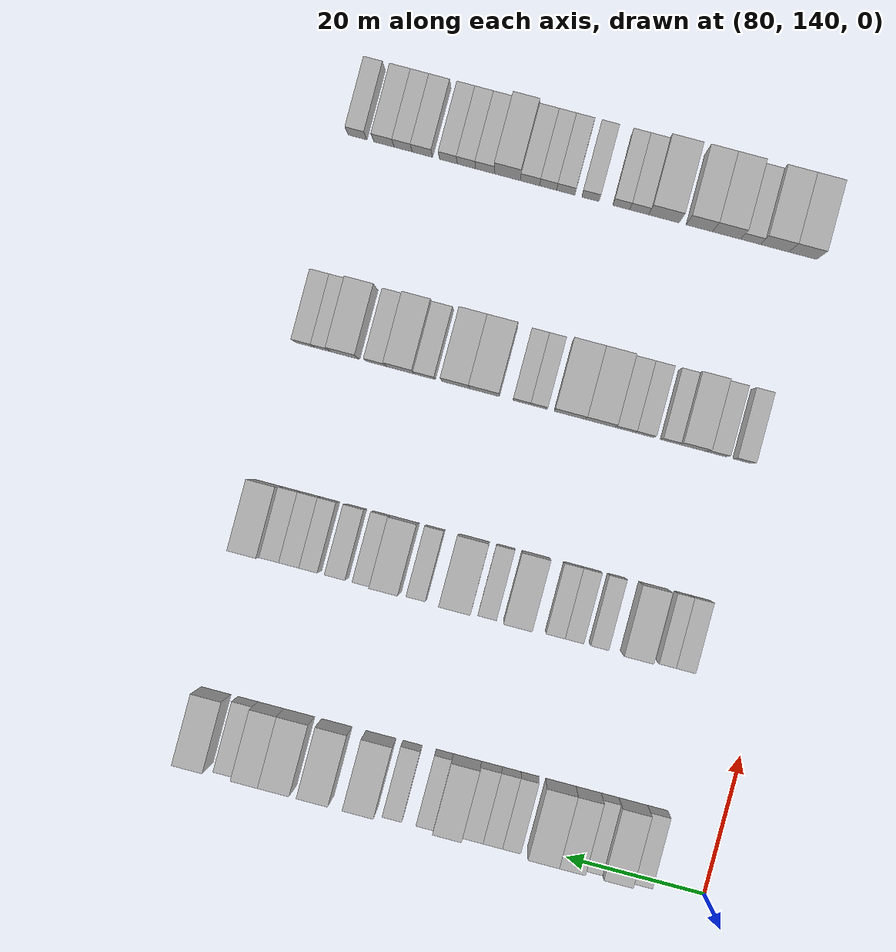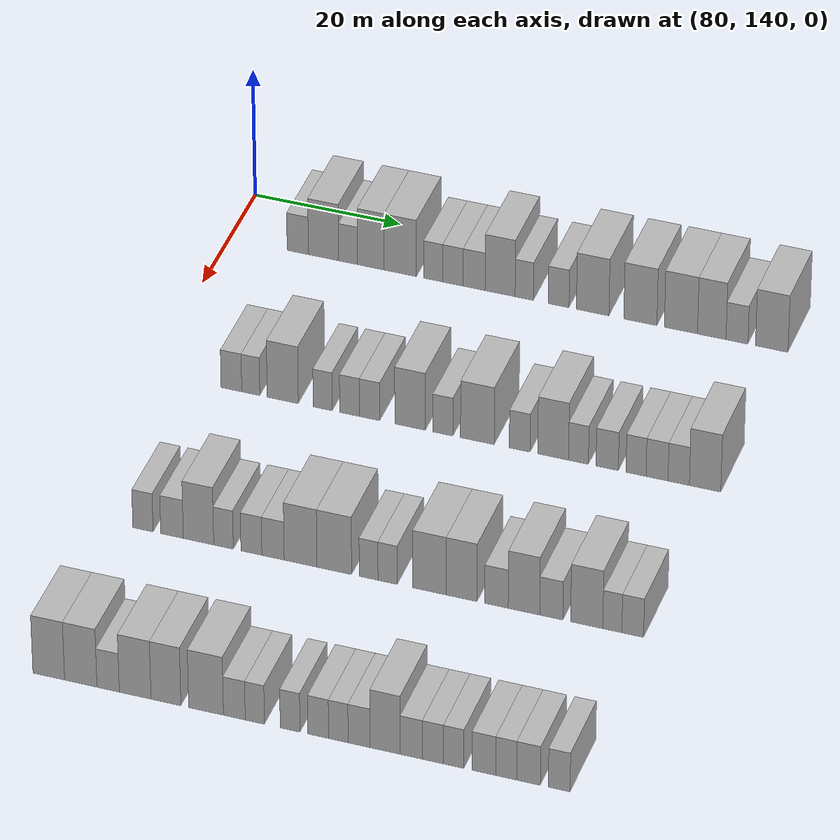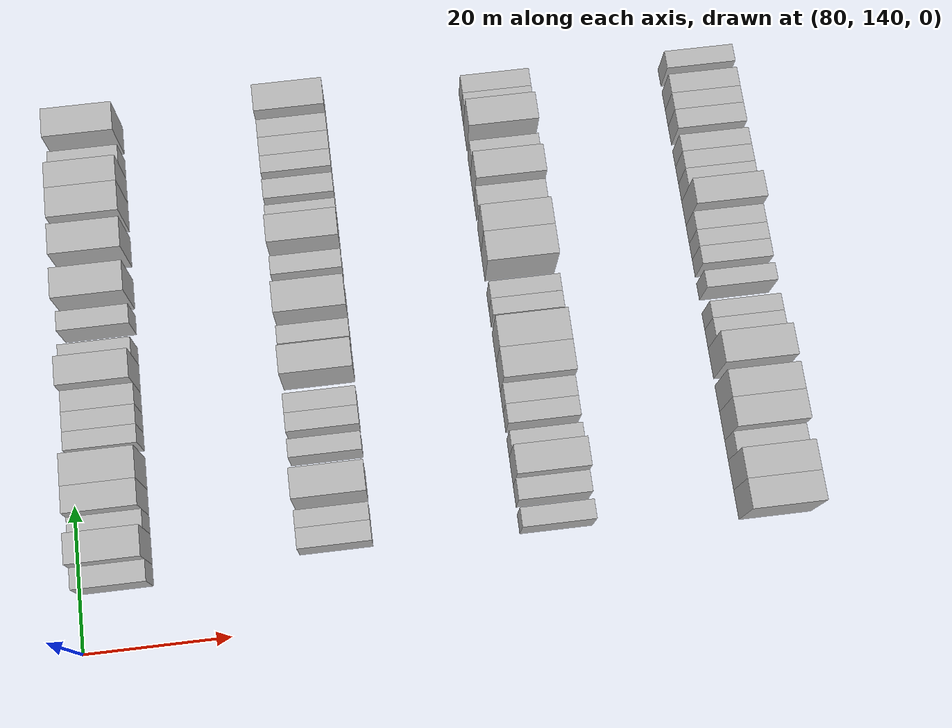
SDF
<sdf version="1.6">
 <world name="default">
  <model name="building_615">
   <static>1</static>
   <pose>85.0000 149.4168 0 0.000000 0.000000 0.000000</pose>
   <link name="link">
    <pose>0 0 3.00 0 0 0</pose>
    <collision name="collision"><geometry><box><size>10.0000 2.9151 6.0000</size></box></geometry></collision>
    <visual name="visual">
     <cast_shadows>0</cast_shadows>
     <geometry><box><size>10.0000 2.9151 6.0000</size></box></geometry>
     <material>
      <script>
       <uri>model://HANNAS_wall/materials/scripts</uri>
       <uri>model://HANNAS_wall/materials/textures</uri>
       <name>vrc/HANNAS_wall</name>
      </script>
     </material>
    </visual>
   </link>
  </model>
  <model name="building_616">
   <static>1</static>
   <pose>85.0000 152.9480 0 0.000000 0.000000 0.000000</pose>
   <link name="link">
    <pose>0 0 4.50 0 0 0</pose>
    <collision name="collision"><geometry><box><size>10.0000 4.1473 9.0000</size></box></geometry></collision>
    <visual name="visual">
     <cast_shadows>0</cast_shadows>
     <geometry><box><size>10.0000 4.1473 9.0000</size></box></geometry>
     <material>
      <script>
       <uri>model://HANNAS_wall/materials/scripts</uri>
       <uri>model://HANNAS_wall/materials/textures</uri>
       <name>vrc/HANNAS_wall</name>
      </script>
     </material>
    </visual>
   </link>
  </model>
  <model name="building_617">
   <static>1</static>
   <pose>85.0000 156.3062 0 0.000000 0.000000 0.000000</pose>
   <link name="link">
    <pose>0 0 3.00 0 0 0</pose>
    <collision name="collision"><geometry><box><size>10.0000 2.5690 6.0000</size></box></geometry></collision>
    <visual name="visual">
     <cast_shadows>0</cast_shadows>
     <geometry><box><size>10.0000 2.5690 6.0000</size></box></geometry>
     <material>
      <script>
       <uri>model://HANNAS_wall/materials/scripts</uri>
       <uri>model://HANNAS_wall/materials/textures</uri>
       <name>vrc/HANNAS_wall</name>
      </script>
     </material>
    </visual>
   </link>
  </model>
  <model name="building_618">
   <static>1</static>
   <pose>85.0000 159.4167 0 0.000000 0.000000 0.000000</pose>
   <link name="link">
    <pose>0 0 4.50 0 0 0</pose>
    <collision name="collision"><geometry><box><size>10.0000 3.6521 9.0000</size></box></geometry></collision>
    <visual name="visual">
     <cast_shadows>0</cast_shadows>
     <geometry><box><size>10.0000 3.6521 9.0000</size></box></geometry>
     <material>
      <script>
       <uri>model://HANNAS_wall/materials/scripts</uri>
       <uri>model://HANNAS_wall/materials/textures</uri>
       <name>vrc/HANNAS_wall</name>
      </script>
     </material>
    </visual>
   </link>
  </model>
  <model name="building_619">
   <static>1</static>
   <pose>85.0000 163.4427 0 0.000000 0.000000 0.000000</pose>
   <link name="link">
    <pose>0 0 4.50 0 0 0</pose>
    <collision name="collision"><geometry><box><size>10.0000 4.3999 9.0000</size></box></geometry></collision>
    <visual name="visual">
     <cast_shadows>0</cast_shadows>
     <geometry><box><size>10.0000 4.3999 9.0000</size></box></geometry>
     <material>
      <script>
       <uri>model://HANNAS_wall/materials/scripts</uri>
       <uri>model://HANNAS_wall/materials/textures</uri>
       <name>vrc/HANNAS_wall</name>
      </script>
     </material>
    </visual>
   </link>
  </model>
  <model name="building_620">
   <static>1</static>
   <pose>85.0000 167.9324 0 0.000000 0.000000 0.000000</pose>
   <link name="link">
    <pose>0 0 3.00 0 0 0</pose>
    <collision name="collision"><geometry><box><size>10.0000 2.5796 6.0000</size></box></geometry></collision>
    <visual name="visual">
     <cast_shadows>0</cast_shadows>
     <geometry><box><size>10.0000 2.5796 6.0000</size></box></geometry>
     <material>
      <script>
       <uri>model://HANNAS_wall/materials/scripts</uri>
       <uri>model://HANNAS_wall/materials/textures</uri>
       <name>vrc/HANNAS_wall</name>
      </script>
     </material>
    </visual>
   </link>
  </model>
  <model name="building_621">
   <static>1</static>
   <pose>85.0000 170.6071 0 0.000000 0.000000 0.000000</pose>
   <link name="link">
    <pose>0 0 3.00 0 0 0</pose>
    <collision name="collision"><geometry><box><size>10.0000 2.7698 6.0000</size></box></geometry></collision>
    <visual name="visual">
     <cast_shadows>0</cast_shadows>
     <geometry><box><size>10.0000 2.7698 6.0000</size></box></geometry>
     <material>
      <script>
       <uri>model://HANNAS_wall/materials/scripts</uri>
       <uri>model://HANNAS_wall/materials/textures</uri>
       <name>vrc/HANNAS_wall</name>
      </script>
     </material>
    </visual>
   </link>
  </model>
  <model name="building_622">
   <static>1</static>
   <pose>85.0000 173.4823 0 0.000000 0.000000 0.000000</pose>
   <link name="link">
    <pose>0 0 3.00 0 0 0</pose>
    <collision name="collision"><geometry><box><size>10.0000 2.9806 6.0000</size></box></geometry></collision>
    <visual name="visual">
     <cast_shadows>0</cast_shadows>
     <geometry><box><size>10.0000 2.9806 6.0000</size></box></geometry>
     <material>
      <script>
       <uri>model://HANNAS_wall/materials/scripts</uri>
       <uri>model://HANNAS_wall/materials/textures</uri>
       <name>vrc/HANNAS_wall</name>
      </script>
     </material>
    </visual>
   </link>
  </model>
  <model name="building_623">
   <static>1</static>
   <pose>85.0000 177.0059 0 0.000000 0.000000 0.000000</pose>
   <link name="link">
    <pose>0 0 4.50 0 0 0</pose>
    <collision name="collision"><geometry><box><size>10.0000 4.0666 9.0000</size></box></geometry></collision>
    <visual name="visual">
     <cast_shadows>0</cast_shadows>
     <geometry><box><size>10.0000 4.0666 9.0000</size></box></geometry>
     <material>
      <script>
       <uri>model://HANNAS_wall/materials/scripts</uri>
       <uri>model://HANNAS_wall/materials/textures</uri>
       <name>vrc/HANNAS_wall</name>
      </script>
     </material>
    </visual>
   </link>
  </model>
  <model name="building_624">
   <static>1</static>
   <pose>85.0000 180.2767 0 0.000000 0.000000 0.000000</pose>
   <link name="link">
    <pose>0 0 3.00 0 0 0</pose>
    <collision name="collision"><geometry><box><size>10.0000 2.4750 6.0000</size></box></geometry></collision>
    <visual name="visual">
     <cast_shadows>0</cast_shadows>
     <geometry><box><size>10.0000 2.4750 6.0000</size></box></geometry>
     <material>
      <script>
       <uri>model://HANNAS_wall/materials/scripts</uri>
       <uri>model://HANNAS_wall/materials/textures</uri>
       <name>vrc/HANNAS_wall</name>
      </script>
     </material>
    </visual>
   </link>
  </model>
  <model name="building_625">
   <static>1</static>
   <pose>85.0000 184.9134 0 0.000000 0.000000 0.000000</pose>
   <link name="link">
    <pose>0 0 3.00 0 0 0</pose>
    <collision name="collision"><geometry><box><size>10.0000 2.7983 6.0000</size></box></geometry></collision>
    <visual name="visual">
     <cast_shadows>0</cast_shadows>
     <geometry><box><size>10.0000 2.7983 6.0000</size></box></geometry>
     <material>
      <script>
       <uri>model://HANNAS_wall/materials/scripts</uri>
       <uri>model://HANNAS_wall/materials/textures</uri>
       <name>vrc/HANNAS_wall</name>
      </script>
     </material>
    </visual>
   </link>
  </model>
  <model name="building_626">
   <static>1</static>
   <pose>85.0000 189.5002 0 0.000000 0.000000 0.000000</pose>
   <link name="link">
    <pose>0 0 4.50 0 0 0</pose>
    <collision name="collision"><geometry><box><size>10.0000 4.3754 9.0000</size></box></geometry></collision>
    <visual name="visual">
     <cast_shadows>0</cast_shadows>
     <geometry><box><size>10.0000 4.3754 9.0000</size></box></geometry>
     <material>
      <script>
       <uri>model://HANNAS_wall/materials/scripts</uri>
       <uri>model://HANNAS_wall/materials/textures</uri>
       <name>vrc/HANNAS_wall</name>
      </script>
     </material>
    </visual>
   </link>
  </model>
  <model name="building_627">
   <static>1</static>
   <pose>85.0000 195.9035 0 0.000000 0.000000 0.000000</pose>
   <link name="link">
    <pose>0 0 4.50 0 0 0</pose>
    <collision name="collision"><geometry><box><size>10.0000 4.4311 9.0000</size></box></geometry></collision>
    <visual name="visual">
     <cast_shadows>0</cast_shadows>
     <geometry><box><size>10.0000 4.4311 9.0000</size></box></geometry>
     <material>
      <script>
       <uri>model://HANNAS_wall/materials/scripts</uri>
       <uri>model://HANNAS_wall/materials/textures</uri>
       <name>vrc/HANNAS_wall</name>
      </script>
     </material>
    </visual>
   </link>
  </model>
  <model name="building_628">
   <static>1</static>
   <pose>85.0000 201.3303 0 0.000000 0.000000 0.000000</pose>
   <link name="link">
    <pose>0 0 4.50 0 0 0</pose>
    <collision name="collision"><geometry><box><size>10.0000 4.4224 9.0000</size></box></geometry></collision>
    <visual name="visual">
     <cast_shadows>0</cast_shadows>
     <geometry><box><size>10.0000 4.4224 9.0000</size></box></geometry>
     <material>
      <script>
       <uri>model://HANNAS_wall/materials/scripts</uri>
       <uri>model://HANNAS_wall/materials/textures</uri>
       <name>vrc/HANNAS_wall</name>
      </script>
     </material>
    </visual>
   </link>
  </model>
  <model name="building_629">
   <static>1</static>
   <pose>85.0000 205.4470 0 0.000000 0.000000 0.000000</pose>
   <link name="link">
    <pose>0 0 4.50 0 0 0</pose>
    <collision name="collision"><geometry><box><size>10.0000 3.8111 9.0000</size></box></geometry></collision>
    <visual name="visual">
     <cast_shadows>0</cast_shadows>
     <geometry><box><size>10.0000 3.8111 9.0000</size></box></geometry>
     <material>
      <script>
       <uri>model://HANNAS_wall/materials/scripts</uri>
       <uri>model://HANNAS_wall/materials/textures</uri>
       <name>vrc/HANNAS_wall</name>
      </script>
     </material>
    </visual>
   </link>
  </model>
  <model name="building_630">
   <static>1</static>
   <pose>85.0000 208.8113 0 0.000000 0.000000 0.000000</pose>
   <link name="link">
    <pose>0 0 3.00 0 0 0</pose>
    <collision name="collision"><geometry><box><size>10.0000 2.9175 6.0000</size></box></geometry></collision>
    <visual name="visual">
     <cast_shadows>0</cast_shadows>
     <geometry><box><size>10.0000 2.9175 6.0000</size></box></geometry>
     <material>
      <script>
       <uri>model://HANNAS_wall/materials/scripts</uri>
       <uri>model://HANNAS_wall/materials/textures</uri>
       <name>vrc/HANNAS_wall</name>
      </script>
     </material>
    </visual>
   </link>
  </model>
  <model name="building_631">
   <static>1</static>
   <pose>85.0000 213.4278 0 0.000000 0.000000 0.000000</pose>
   <link name="link">
    <pose>0 0 4.50 0 0 0</pose>
    <collision name="collision"><geometry><box><size>10.0000 4.3154 9.0000</size></box></geometry></collision>
    <visual name="visual">
     <cast_shadows>0</cast_shadows>
     <geometry><box><size>10.0000 4.3154 9.0000</size></box></geometry>
     <material>
      <script>
       <uri>model://HANNAS_wall/materials/scripts</uri>
       <uri>model://HANNAS_wall/materials/textures</uri>
       <name>vrc/HANNAS_wall</name>
      </script>
     </material>
    </visual>
   </link>
  </model>
  <model name="building_837">
   <static>1</static>
   <pose>115.0000 151.1772 0 0.000000 0.000000 0.000000</pose>
   <link name="link">
    <pose>0 0 3.00 0 0 0</pose>
    <collision name="collision"><geometry><box><size>10.0000 2.7661 6.0000</size></box></geometry></collision>
    <visual name="visual">
     <cast_shadows>0</cast_shadows>
     <geometry><box><size>10.0000 2.7661 6.0000</size></box></geometry>
     <material>
      <script>
       <uri>model://HANNAS_wall/materials/scripts</uri>
       <uri>model://HANNAS_wall/materials/textures</uri>
       <name>vrc/HANNAS_wall</name>
      </script>
     </material>
    </visual>
   </link>
  </model>
  <model name="building_838">
   <static>1</static>
   <pose>115.0000 153.7708 0 0.000000 0.000000 0.000000</pose>
   <link name="link">
    <pose>0 0 3.00 0 0 0</pose>
    <collision name="collision"><geometry><box><size>10.0000 2.4211 6.0000</size></box></geometry></collision>
    <visual name="visual">
     <cast_shadows>0</cast_shadows>
     <geometry><box><size>10.0000 2.4211 6.0000</size></box></geometry>
     <material>
      <script>
       <uri>model://HANNAS_wall/materials/scripts</uri>
       <uri>model://HANNAS_wall/materials/textures</uri>
       <name>vrc/HANNAS_wall</name>
      </script>
     </material>
    </visual>
   </link>
  </model>
  <model name="building_839">
   <static>1</static>
   <pose>115.0000 158.0596 0 0.000000 0.000000 0.000000</pose>
   <link name="link">
    <pose>0 0 4.50 0 0 0</pose>
    <collision name="collision"><geometry><box><size>10.0000 4.1564 9.0000</size></box></geometry></collision>
    <visual name="visual">
     <cast_shadows>0</cast_shadows>
     <geometry><box><size>10.0000 4.1564 9.0000</size></box></geometry>
     <material>
      <script>
       <uri>model://HANNAS_wall/materials/scripts</uri>
       <uri>model://HANNAS_wall/materials/textures</uri>
       <name>vrc/HANNAS_wall</name>
      </script>
     </material>
    </visual>
   </link>
  </model>
  <model name="building_840">
   <static>1</static>
   <pose>115.0000 163.4055 0 0.000000 0.000000 0.000000</pose>
   <link name="link">
    <pose>0 0 3.00 0 0 0</pose>
    <collision name="collision"><geometry><box><size>10.0000 2.5354 6.0000</size></box></geometry></collision>
    <visual name="visual">
     <cast_shadows>0</cast_shadows>
     <geometry><box><size>10.0000 2.5354 6.0000</size></box></geometry>
     <material>
      <script>
       <uri>model://HANNAS_wall/materials/scripts</uri>
       <uri>model://HANNAS_wall/materials/textures</uri>
       <name>vrc/HANNAS_wall</name>
      </script>
     </material>
    </visual>
   </link>
  </model>
  <model name="building_841">
   <static>1</static>
   <pose>115.0000 166.9961 0 0.000000 0.000000 0.000000</pose>
   <link name="link">
    <pose>0 0 3.00 0 0 0</pose>
    <collision name="collision"><geometry><box><size>10.0000 2.6458 6.0000</size></box></geometry></collision>
    <visual name="visual">
     <cast_shadows>0</cast_shadows>
     <geometry><box><size>10.0000 2.6458 6.0000</size></box></geometry>
     <material>
      <script>
       <uri>model://HANNAS_wall/materials/scripts</uri>
       <uri>model://HANNAS_wall/materials/textures</uri>
       <name>vrc/HANNAS_wall</name>
      </script>
     </material>
    </visual>
   </link>
  </model>
  <model name="building_842">
   <static>1</static>
   <pose>115.0000 169.6676 0 0.000000 0.000000 0.000000</pose>
   <link name="link">
    <pose>0 0 3.00 0 0 0</pose>
    <collision name="collision"><geometry><box><size>10.0000 2.6973 6.0000</size></box></geometry></collision>
    <visual name="visual">
     <cast_shadows>0</cast_shadows>
     <geometry><box><size>10.0000 2.6973 6.0000</size></box></geometry>
     <material>
      <script>
       <uri>model://HANNAS_wall/materials/scripts</uri>
       <uri>model://HANNAS_wall/materials/textures</uri>
       <name>vrc/HANNAS_wall</name>
      </script>
     </material>
    </visual>
   </link>
  </model>
  <model name="building_843">
   <static>1</static>
   <pose>115.0000 175.0352 0 0.000000 0.000000 0.000000</pose>
   <link name="link">
    <pose>0 0 4.50 0 0 0</pose>
    <collision name="collision"><geometry><box><size>10.0000 4.0380 9.0000</size></box></geometry></collision>
    <visual name="visual">
     <cast_shadows>0</cast_shadows>
     <geometry><box><size>10.0000 4.0380 9.0000</size></box></geometry>
     <material>
      <script>
       <uri>model://HANNAS_wall/materials/scripts</uri>
       <uri>model://HANNAS_wall/materials/textures</uri>
       <name>vrc/HANNAS_wall</name>
      </script>
     </material>
    </visual>
   </link>
  </model>
  <model name="building_844">
   <static>1</static>
   <pose>115.0000 179.3825 0 0.000000 0.000000 0.000000</pose>
   <link name="link">
    <pose>0 0 3.00 0 0 0</pose>
    <collision name="collision"><geometry><box><size>10.0000 2.6566 6.0000</size></box></geometry></collision>
    <visual name="visual">
     <cast_shadows>0</cast_shadows>
     <geometry><box><size>10.0000 2.6566 6.0000</size></box></geometry>
     <material>
      <script>
       <uri>model://HANNAS_wall/materials/scripts</uri>
       <uri>model://HANNAS_wall/materials/textures</uri>
       <name>vrc/HANNAS_wall</name>
      </script>
     </material>
    </visual>
   </link>
  </model>
  <model name="building_845">
   <static>1</static>
   <pose>115.0000 183.9356 0 0.000000 0.000000 0.000000</pose>
   <link name="link">
    <pose>0 0 4.50 0 0 0</pose>
    <collision name="collision"><geometry><box><size>10.0000 4.4495 9.0000</size></box></geometry></collision>
    <visual name="visual">
     <cast_shadows>0</cast_shadows>
     <geometry><box><size>10.0000 4.4495 9.0000</size></box></geometry>
     <material>
      <script>
       <uri>model://HANNAS_wall/materials/scripts</uri>
       <uri>model://HANNAS_wall/materials/textures</uri>
       <name>vrc/HANNAS_wall</name>
      </script>
     </material>
    </visual>
   </link>
  </model>
  <model name="building_846">
   <static>1</static>
   <pose>115.0000 189.5260 0 0.000000 0.000000 0.000000</pose>
   <link name="link">
    <pose>0 0 3.00 0 0 0</pose>
    <collision name="collision"><geometry><box><size>10.0000 2.7313 6.0000</size></box></geometry></collision>
    <visual name="visual">
     <cast_shadows>0</cast_shadows>
     <geometry><box><size>10.0000 2.7313 6.0000</size></box></geometry>
     <material>
      <script>
       <uri>model://HANNAS_wall/materials/scripts</uri>
       <uri>model://HANNAS_wall/materials/textures</uri>
       <name>vrc/HANNAS_wall</name>
      </script>
     </material>
    </visual>
   </link>
  </model>
  <model name="building_847">
   <static>1</static>
   <pose>115.0000 193.9140 0 0.000000 0.000000 0.000000</pose>
   <link name="link">
    <pose>0 0 4.50 0 0 0</pose>
    <collision name="collision"><geometry><box><size>10.0000 4.0448 9.0000</size></box></geometry></collision>
    <visual name="visual">
     <cast_shadows>0</cast_shadows>
     <geometry><box><size>10.0000 4.0448 9.0000</size></box></geometry>
     <material>
      <script>
       <uri>model://HANNAS_wall/materials/scripts</uri>
       <uri>model://HANNAS_wall/materials/textures</uri>
       <name>vrc/HANNAS_wall</name>
      </script>
     </material>
    </visual>
   </link>
  </model>
  <model name="building_848">
   <static>1</static>
   <pose>115.0000 197.2387 0 0.000000 0.000000 0.000000</pose>
   <link name="link">
    <pose>0 0 3.00 0 0 0</pose>
    <collision name="collision"><geometry><box><size>10.0000 2.6046 6.0000</size></box></geometry></collision>
    <visual name="visual">
     <cast_shadows>0</cast_shadows>
     <geometry><box><size>10.0000 2.6046 6.0000</size></box></geometry>
     <material>
      <script>
       <uri>model://HANNAS_wall/materials/scripts</uri>
       <uri>model://HANNAS_wall/materials/textures</uri>
       <name>vrc/HANNAS_wall</name>
      </script>
     </material>
    </visual>
   </link>
  </model>
  <model name="building_849">
   <static>1</static>
   <pose>115.0000 201.0000 0 0.000000 0.000000 0.000000</pose>
   <link name="link">
    <pose>0 0 3.00 0 0 0</pose>
    <collision name="collision"><geometry><box><size>10.0000 2.9181 6.0000</size></box></geometry></collision>
    <visual name="visual">
     <cast_shadows>0</cast_shadows>
     <geometry><box><size>10.0000 2.9181 6.0000</size></box></geometry>
     <material>
      <script>
       <uri>model://HANNAS_wall/materials/scripts</uri>
       <uri>model://HANNAS_wall/materials/textures</uri>
       <name>vrc/HANNAS_wall</name>
      </script>
     </material>
    </visual>
   </link>
  </model>
  <model name="building_850">
   <static>1</static>
   <pose>115.0000 204.7711 0 0.000000 0.000000 0.000000</pose>
   <link name="link">
    <pose>0 0 3.00 0 0 0</pose>
    <collision name="collision"><geometry><box><size>10.0000 2.6240 6.0000</size></box></geometry></collision>
    <visual name="visual">
     <cast_shadows>0</cast_shadows>
     <geometry><box><size>10.0000 2.6240 6.0000</size></box></geometry>
     <material>
      <script>
       <uri>model://HANNAS_wall/materials/scripts</uri>
       <uri>model://HANNAS_wall/materials/textures</uri>
       <name>vrc/HANNAS_wall</name>
      </script>
     </material>
    </visual>
   </link>
  </model>
  <model name="building_851">
   <static>1</static>
   <pose>115.0000 207.5116 0 0.000000 0.000000 0.000000</pose>
   <link name="link">
    <pose>0 0 3.00 0 0 0</pose>
    <collision name="collision"><geometry><box><size>10.0000 2.8571 6.0000</size></box></geometry></collision>
    <visual name="visual">
     <cast_shadows>0</cast_shadows>
     <geometry><box><size>10.0000 2.8571 6.0000</size></box></geometry>
     <material>
      <script>
       <uri>model://HANNAS_wall/materials/scripts</uri>
       <uri>model://HANNAS_wall/materials/textures</uri>
       <name>vrc/HANNAS_wall</name>
      </script>
     </material>
    </visual>
   </link>
  </model>
  <model name="building_852">
   <static>1</static>
   <pose>115.0000 210.3273 0 0.000000 0.000000 0.000000</pose>
   <link name="link">
    <pose>0 0 3.00 0 0 0</pose>
    <collision name="collision"><geometry><box><size>10.0000 2.7743 6.0000</size></box></geometry></collision>
    <visual name="visual">
     <cast_shadows>0</cast_shadows>
     <geometry><box><size>10.0000 2.7743 6.0000</size></box></geometry>
     <material>
      <script>
       <uri>model://HANNAS_wall/materials/scripts</uri>
       <uri>model://HANNAS_wall/materials/textures</uri>
       <name>vrc/HANNAS_wall</name>
      </script>
     </material>
    </visual>
   </link>
  </model>
  <model name="building_853">
   <static>1</static>
   <pose>115.0000 213.7557 0 0.000000 0.000000 0.000000</pose>
   <link name="link">
    <pose>0 0 4.50 0 0 0</pose>
    <collision name="collision"><geometry><box><size>10.0000 4.0825 9.0000</size></box></geometry></collision>
    <visual name="visual">
     <cast_shadows>0</cast_shadows>
     <geometry><box><size>10.0000 4.0825 9.0000</size></box></geometry>
     <material>
      <script>
       <uri>model://HANNAS_wall/materials/scripts</uri>
       <uri>model://HANNAS_wall/materials/textures</uri>
       <name>vrc/HANNAS_wall</name>
      </script>
     </material>
    </visual>
   </link>
  </model>
  <model name="building_1067">
   <static>1</static>
   <pose>145.0000 150.4676 0 0.000000 0.000000 0.000000</pose>
   <link name="link">
    <pose>0 0 3.00 0 0 0</pose>
    <collision name="collision"><geometry><box><size>10.0000 2.6635 6.0000</size></box></geometry></collision>
    <visual name="visual">
     <cast_shadows>0</cast_shadows>
     <geometry><box><size>10.0000 2.6635 6.0000</size></box></geometry>
     <material>
      <script>
       <uri>model://HANNAS_wall/materials/scripts</uri>
       <uri>model://HANNAS_wall/materials/textures</uri>
       <name>vrc/HANNAS_wall</name>
      </script>
     </material>
    </visual>
   </link>
  </model>
  <model name="building_1068">
   <static>1</static>
   <pose>145.0000 154.2847 0 0.000000 0.000000 0.000000</pose>
   <link name="link">
    <pose>0 0 3.00 0 0 0</pose>
    <collision name="collision"><geometry><box><size>10.0000 2.9707 6.0000</size></box></geometry></collision>
    <visual name="visual">
     <cast_shadows>0</cast_shadows>
     <geometry><box><size>10.0000 2.9707 6.0000</size></box></geometry>
     <material>
      <script>
       <uri>model://HANNAS_wall/materials/scripts</uri>
       <uri>model://HANNAS_wall/materials/textures</uri>
       <name>vrc/HANNAS_wall</name>
      </script>
     </material>
    </visual>
   </link>
  </model>
  <model name="building_1069">
   <static>1</static>
   <pose>145.0000 157.7630 0 0.000000 0.000000 0.000000</pose>
   <link name="link">
    <pose>0 0 4.50 0 0 0</pose>
    <collision name="collision"><geometry><box><size>10.0000 3.9857 9.0000</size></box></geometry></collision>
    <visual name="visual">
     <cast_shadows>0</cast_shadows>
     <geometry><box><size>10.0000 3.9857 9.0000</size></box></geometry>
     <material>
      <script>
       <uri>model://HANNAS_wall/materials/scripts</uri>
       <uri>model://HANNAS_wall/materials/textures</uri>
       <name>vrc/HANNAS_wall</name>
      </script>
     </material>
    </visual>
   </link>
  </model>
  <model name="building_1070">
   <static>1</static>
   <pose>145.0000 161.0349 0 0.000000 0.000000 0.000000</pose>
   <link name="link">
    <pose>0 0 3.00 0 0 0</pose>
    <collision name="collision"><geometry><box><size>10.0000 2.5582 6.0000</size></box></geometry></collision>
    <visual name="visual">
     <cast_shadows>0</cast_shadows>
     <geometry><box><size>10.0000 2.5582 6.0000</size></box></geometry>
     <material>
      <script>
       <uri>model://HANNAS_wall/materials/scripts</uri>
       <uri>model://HANNAS_wall/materials/textures</uri>
       <name>vrc/HANNAS_wall</name>
      </script>
     </material>
    </visual>
   </link>
  </model>
  <model name="building_1071">
   <static>1</static>
   <pose>145.0000 164.6813 0 0.000000 0.000000 0.000000</pose>
   <link name="link">
    <pose>0 0 3.00 0 0 0</pose>
    <collision name="collision"><geometry><box><size>10.0000 2.7347 6.0000</size></box></geometry></collision>
    <visual name="visual">
     <cast_shadows>0</cast_shadows>
     <geometry><box><size>10.0000 2.7347 6.0000</size></box></geometry>
     <material>
      <script>
       <uri>model://HANNAS_wall/materials/scripts</uri>
       <uri>model://HANNAS_wall/materials/textures</uri>
       <name>vrc/HANNAS_wall</name>
      </script>
     </material>
    </visual>
   </link>
  </model>
  <model name="building_1072">
   <static>1</static>
   <pose>145.0000 167.5045 0 0.000000 0.000000 0.000000</pose>
   <link name="link">
    <pose>0 0 3.00 0 0 0</pose>
    <collision name="collision"><geometry><box><size>10.0000 2.9115 6.0000</size></box></geometry></collision>
    <visual name="visual">
     <cast_shadows>0</cast_shadows>
     <geometry><box><size>10.0000 2.9115 6.0000</size></box></geometry>
     <material>
      <script>
       <uri>model://HANNAS_wall/materials/scripts</uri>
       <uri>model://HANNAS_wall/materials/textures</uri>
       <name>vrc/HANNAS_wall</name>
      </script>
     </material>
    </visual>
   </link>
  </model>
  <model name="building_1073">
   <static>1</static>
   <pose>145.0000 171.0944 0 0.000000 0.000000 0.000000</pose>
   <link name="link">
    <pose>0 0 4.50 0 0 0</pose>
    <collision name="collision"><geometry><box><size>10.0000 4.2684 9.0000</size></box></geometry></collision>
    <visual name="visual">
     <cast_shadows>0</cast_shadows>
     <geometry><box><size>10.0000 4.2684 9.0000</size></box></geometry>
     <material>
      <script>
       <uri>model://HANNAS_wall/materials/scripts</uri>
       <uri>model://HANNAS_wall/materials/textures</uri>
       <name>vrc/HANNAS_wall</name>
      </script>
     </material>
    </visual>
   </link>
  </model>
  <model name="building_1074">
   <static>1</static>
   <pose>145.0000 175.4725 0 0.000000 0.000000 0.000000</pose>
   <link name="link">
    <pose>0 0 4.50 0 0 0</pose>
    <collision name="collision"><geometry><box><size>10.0000 4.4878 9.0000</size></box></geometry></collision>
    <visual name="visual">
     <cast_shadows>0</cast_shadows>
     <geometry><box><size>10.0000 4.4878 9.0000</size></box></geometry>
     <material>
      <script>
       <uri>model://HANNAS_wall/materials/scripts</uri>
       <uri>model://HANNAS_wall/materials/textures</uri>
       <name>vrc/HANNAS_wall</name>
      </script>
     </material>
    </visual>
   </link>
  </model>
  <model name="building_1075">
   <static>1</static>
   <pose>145.0000 179.9274 0 0.000000 0.000000 0.000000</pose>
   <link name="link">
    <pose>0 0 3.00 0 0 0</pose>
    <collision name="collision"><geometry><box><size>10.0000 2.4221 6.0000</size></box></geometry></collision>
    <visual name="visual">
     <cast_shadows>0</cast_shadows>
     <geometry><box><size>10.0000 2.4221 6.0000</size></box></geometry>
     <material>
      <script>
       <uri>model://HANNAS_wall/materials/scripts</uri>
       <uri>model://HANNAS_wall/materials/textures</uri>
       <name>vrc/HANNAS_wall</name>
      </script>
     </material>
    </visual>
   </link>
  </model>
  <model name="building_1076">
   <static>1</static>
   <pose>145.0000 182.3836 0 0.000000 0.000000 0.000000</pose>
   <link name="link">
    <pose>0 0 3.00 0 0 0</pose>
    <collision name="collision"><geometry><box><size>10.0000 2.4902 6.0000</size></box></geometry></collision>
    <visual name="visual">
     <cast_shadows>0</cast_shadows>
     <geometry><box><size>10.0000 2.4902 6.0000</size></box></geometry>
     <material>
      <script>
       <uri>model://HANNAS_wall/materials/scripts</uri>
       <uri>model://HANNAS_wall/materials/textures</uri>
       <name>vrc/HANNAS_wall</name>
      </script>
     </material>
    </visual>
   </link>
  </model>
  <model name="building_1077">
   <static>1</static>
   <pose>145.0000 187.7892 0 0.000000 0.000000 0.000000</pose>
   <link name="link">
    <pose>0 0 4.50 0 0 0</pose>
    <collision name="collision"><geometry><box><size>10.0000 4.3210 9.0000</size></box></geometry></collision>
    <visual name="visual">
     <cast_shadows>0</cast_shadows>
     <geometry><box><size>10.0000 4.3210 9.0000</size></box></geometry>
     <material>
      <script>
       <uri>model://HANNAS_wall/materials/scripts</uri>
       <uri>model://HANNAS_wall/materials/textures</uri>
       <name>vrc/HANNAS_wall</name>
      </script>
     </material>
    </visual>
   </link>
  </model>
  <model name="building_1078">
   <static>1</static>
   <pose>145.0000 191.9301 0 0.000000 0.000000 0.000000</pose>
   <link name="link">
    <pose>0 0 4.50 0 0 0</pose>
    <collision name="collision"><geometry><box><size>10.0000 3.9610 9.0000</size></box></geometry></collision>
    <visual name="visual">
     <cast_shadows>0</cast_shadows>
     <geometry><box><size>10.0000 3.9610 9.0000</size></box></geometry>
     <material>
      <script>
       <uri>model://HANNAS_wall/materials/scripts</uri>
       <uri>model://HANNAS_wall/materials/textures</uri>
       <name>vrc/HANNAS_wall</name>
      </script>
     </material>
    </visual>
   </link>
  </model>
  <model name="building_1079">
   <static>1</static>
   <pose>145.0000 196.4029 0 0.000000 0.000000 0.000000</pose>
   <link name="link">
    <pose>0 0 3.00 0 0 0</pose>
    <collision name="collision"><geometry><box><size>10.0000 2.9845 6.0000</size></box></geometry></collision>
    <visual name="visual">
     <cast_shadows>0</cast_shadows>
     <geometry><box><size>10.0000 2.9845 6.0000</size></box></geometry>
     <material>
      <script>
       <uri>model://HANNAS_wall/materials/scripts</uri>
       <uri>model://HANNAS_wall/materials/textures</uri>
       <name>vrc/HANNAS_wall</name>
      </script>
     </material>
    </visual>
   </link>
  </model>
  <model name="building_1080">
   <static>1</static>
   <pose>145.0000 199.9181 0 0.000000 0.000000 0.000000</pose>
   <link name="link">
    <pose>0 0 4.50 0 0 0</pose>
    <collision name="collision"><geometry><box><size>10.0000 4.0459 9.0000</size></box></geometry></collision>
    <visual name="visual">
     <cast_shadows>0</cast_shadows>
     <geometry><box><size>10.0000 4.0459 9.0000</size></box></geometry>
     <material>
      <script>
       <uri>model://HANNAS_wall/materials/scripts</uri>
       <uri>model://HANNAS_wall/materials/textures</uri>
       <name>vrc/HANNAS_wall</name>
      </script>
     </material>
    </visual>
   </link>
  </model>
  <model name="building_1081">
   <static>1</static>
   <pose>145.0000 203.4167 0 0.000000 0.000000 0.000000</pose>
   <link name="link">
    <pose>0 0 3.00 0 0 0</pose>
    <collision name="collision"><geometry><box><size>10.0000 2.9514 6.0000</size></box></geometry></collision>
    <visual name="visual">
     <cast_shadows>0</cast_shadows>
     <geometry><box><size>10.0000 2.9514 6.0000</size></box></geometry>
     <material>
      <script>
       <uri>model://HANNAS_wall/materials/scripts</uri>
       <uri>model://HANNAS_wall/materials/textures</uri>
       <name>vrc/HANNAS_wall</name>
      </script>
     </material>
    </visual>
   </link>
  </model>
  <model name="building_1082">
   <static>1</static>
   <pose>145.0000 207.9395 0 0.000000 0.000000 0.000000</pose>
   <link name="link">
    <pose>0 0 4.50 0 0 0</pose>
    <collision name="collision"><geometry><box><size>10.0000 4.0942 9.0000</size></box></geometry></collision>
    <visual name="visual">
     <cast_shadows>0</cast_shadows>
     <geometry><box><size>10.0000 4.0942 9.0000</size></box></geometry>
     <material>
      <script>
       <uri>model://HANNAS_wall/materials/scripts</uri>
       <uri>model://HANNAS_wall/materials/textures</uri>
       <name>vrc/HANNAS_wall</name>
      </script>
     </material>
    </visual>
   </link>
  </model>
  <model name="building_1083">
   <static>1</static>
   <pose>145.0000 211.1981 0 0.000000 0.000000 0.000000</pose>
   <link name="link">
    <pose>0 0 3.00 0 0 0</pose>
    <collision name="collision"><geometry><box><size>10.0000 2.4229 6.0000</size></box></geometry></collision>
    <visual name="visual">
     <cast_shadows>0</cast_shadows>
     <geometry><box><size>10.0000 2.4229 6.0000</size></box></geometry>
     <material>
      <script>
       <uri>model://HANNAS_wall/materials/scripts</uri>
       <uri>model://HANNAS_wall/materials/textures</uri>
       <name>vrc/HANNAS_wall</name>
      </script>
     </material>
    </visual>
   </link>
  </model>
  <model name="building_1084">
   <static>1</static>
   <pose>145.0000 213.7887 0 0.000000 0.000000 0.000000</pose>
   <link name="link">
    <pose>0 0 3.00 0 0 0</pose>
    <collision name="collision"><geometry><box><size>10.0000 2.7583 6.0000</size></box></geometry></collision>
    <visual name="visual">
     <cast_shadows>0</cast_shadows>
     <geometry><box><size>10.0000 2.7583 6.0000</size></box></geometry>
     <material>
      <script>
       <uri>model://HANNAS_wall/materials/scripts</uri>
       <uri>model://HANNAS_wall/materials/textures</uri>
       <name>vrc/HANNAS_wall</name>
      </script>
     </material>
    </visual>
   </link>
  </model>
  <model name="building_1303">
   <static>1</static>
   <pose>175.0000 149.5853 0 0.000000 0.000000 0.000000</pose>
   <link name="link">
    <pose>0 0 4.50 0 0 0</pose>
    <collision name="collision"><geometry><box><size>10.0000 4.0721 9.0000</size></box></geometry></collision>
    <visual name="visual">
     <cast_shadows>0</cast_shadows>
     <geometry><box><size>10.0000 4.0721 9.0000</size></box></geometry>
     <material>
      <script>
       <uri>model://HANNAS_wall/materials/scripts</uri>
       <uri>model://HANNAS_wall/materials/textures</uri>
       <name>vrc/HANNAS_wall</name>
      </script>
     </material>
    </visual>
   </link>
  </model>
  <model name="building_1304">
   <static>1</static>
   <pose>175.0000 153.7006 0 0.000000 0.000000 0.000000</pose>
   <link name="link">
    <pose>0 0 4.50 0 0 0</pose>
    <collision name="collision"><geometry><box><size>10.0000 4.1584 9.0000</size></box></geometry></collision>
    <visual name="visual">
     <cast_shadows>0</cast_shadows>
     <geometry><box><size>10.0000 4.1584 9.0000</size></box></geometry>
     <material>
      <script>
       <uri>model://HANNAS_wall/materials/scripts</uri>
       <uri>model://HANNAS_wall/materials/textures</uri>
       <name>vrc/HANNAS_wall</name>
      </script>
     </material>
    </visual>
   </link>
  </model>
  <model name="building_1305">
   <static>1</static>
   <pose>175.0000 157.2130 0 0.000000 0.000000 0.000000</pose>
   <link name="link">
    <pose>0 0 3.00 0 0 0</pose>
    <collision name="collision"><geometry><box><size>10.0000 2.8665 6.0000</size></box></geometry></collision>
    <visual name="visual">
     <cast_shadows>0</cast_shadows>
     <geometry><box><size>10.0000 2.8665 6.0000</size></box></geometry>
     <material>
      <script>
       <uri>model://HANNAS_wall/materials/scripts</uri>
       <uri>model://HANNAS_wall/materials/textures</uri>
       <name>vrc/HANNAS_wall</name>
      </script>
     </material>
    </visual>
   </link>
  </model>
  <model name="building_1306">
   <static>1</static>
   <pose>175.0000 160.6786 0 0.000000 0.000000 0.000000</pose>
   <link name="link">
    <pose>0 0 4.50 0 0 0</pose>
    <collision name="collision"><geometry><box><size>10.0000 4.0648 9.0000</size></box></geometry></collision>
    <visual name="visual">
     <cast_shadows>0</cast_shadows>
     <geometry><box><size>10.0000 4.0648 9.0000</size></box></geometry>
     <material>
      <script>
       <uri>model://HANNAS_wall/materials/scripts</uri>
       <uri>model://HANNAS_wall/materials/textures</uri>
       <name>vrc/HANNAS_wall</name>
      </script>
     </material>
    </visual>
   </link>
  </model>
  <model name="building_1307">
   <static>1</static>
   <pose>175.0000 164.6184 0 0.000000 0.000000 0.000000</pose>
   <link name="link">
    <pose>0 0 4.50 0 0 0</pose>
    <collision name="collision"><geometry><box><size>10.0000 3.8148 9.0000</size></box></geometry></collision>
    <visual name="visual">
     <cast_shadows>0</cast_shadows>
     <geometry><box><size>10.0000 3.8148 9.0000</size></box></geometry>
     <material>
      <script>
       <uri>model://HANNAS_wall/materials/scripts</uri>
       <uri>model://HANNAS_wall/materials/textures</uri>
       <name>vrc/HANNAS_wall</name>
      </script>
     </material>
    </visual>
   </link>
  </model>
  <model name="building_1308">
   <static>1</static>
   <pose>175.0000 169.7390 0 0.000000 0.000000 0.000000</pose>
   <link name="link">
    <pose>0 0 4.50 0 0 0</pose>
    <collision name="collision"><geometry><box><size>10.0000 4.4264 9.0000</size></box></geometry></collision>
    <visual name="visual">
     <cast_shadows>0</cast_shadows>
     <geometry><box><size>10.0000 4.4264 9.0000</size></box></geometry>
     <material>
      <script>
       <uri>model://HANNAS_wall/materials/scripts</uri>
       <uri>model://HANNAS_wall/materials/textures</uri>
       <name>vrc/HANNAS_wall</name>
      </script>
     </material>
    </visual>
   </link>
  </model>
  <model name="building_1309">
   <static>1</static>
   <pose>175.0000 173.3360 0 0.000000 0.000000 0.000000</pose>
   <link name="link">
    <pose>0 0 3.00 0 0 0</pose>
    <collision name="collision"><geometry><box><size>10.0000 2.7677 6.0000</size></box></geometry></collision>
    <visual name="visual">
     <cast_shadows>0</cast_shadows>
     <geometry><box><size>10.0000 2.7677 6.0000</size></box></geometry>
     <material>
      <script>
       <uri>model://HANNAS_wall/materials/scripts</uri>
       <uri>model://HANNAS_wall/materials/textures</uri>
       <name>vrc/HANNAS_wall</name>
      </script>
     </material>
    </visual>
   </link>
  </model>
  <model name="building_1310">
   <static>1</static>
   <pose>175.0000 175.9393 0 0.000000 0.000000 0.000000</pose>
   <link name="link">
    <pose>0 0 3.00 0 0 0</pose>
    <collision name="collision"><geometry><box><size>10.0000 2.4390 6.0000</size></box></geometry></collision>
    <visual name="visual">
     <cast_shadows>0</cast_shadows>
     <geometry><box><size>10.0000 2.4390 6.0000</size></box></geometry>
     <material>
      <script>
       <uri>model://HANNAS_wall/materials/scripts</uri>
       <uri>model://HANNAS_wall/materials/textures</uri>
       <name>vrc/HANNAS_wall</name>
      </script>
     </material>
    </visual>
   </link>
  </model>
  <model name="building_1311">
   <static>1</static>
   <pose>175.0000 180.4111 0 0.000000 0.000000 0.000000</pose>
   <link name="link">
    <pose>0 0 3.00 0 0 0</pose>
    <collision name="collision"><geometry><box><size>10.0000 2.5046 6.0000</size></box></geometry></collision>
    <visual name="visual">
     <cast_shadows>0</cast_shadows>
     <geometry><box><size>10.0000 2.5046 6.0000</size></box></geometry>
     <material>
      <script>
       <uri>model://HANNAS_wall/materials/scripts</uri>
       <uri>model://HANNAS_wall/materials/textures</uri>
       <name>vrc/HANNAS_wall</name>
      </script>
     </material>
    </visual>
   </link>
  </model>
  <model name="building_1312">
   <static>1</static>
   <pose>175.0000 183.9723 0 0.000000 0.000000 0.000000</pose>
   <link name="link">
    <pose>0 0 3.00 0 0 0</pose>
    <collision name="collision"><geometry><box><size>10.0000 2.6178 6.0000</size></box></geometry></collision>
    <visual name="visual">
     <cast_shadows>0</cast_shadows>
     <geometry><box><size>10.0000 2.6178 6.0000</size></box></geometry>
     <material>
      <script>
       <uri>model://HANNAS_wall/materials/scripts</uri>
       <uri>model://HANNAS_wall/materials/textures</uri>
       <name>vrc/HANNAS_wall</name>
      </script>
     </material>
    </visual>
   </link>
  </model>
  <model name="building_1313">
   <static>1</static>
   <pose>175.0000 186.5086 0 0.000000 0.000000 0.000000</pose>
   <link name="link">
    <pose>0 0 3.00 0 0 0</pose>
    <collision name="collision"><geometry><box><size>10.0000 2.4547 6.0000</size></box></geometry></collision>
    <visual name="visual">
     <cast_shadows>0</cast_shadows>
     <geometry><box><size>10.0000 2.4547 6.0000</size></box></geometry>
     <material>
      <script>
       <uri>model://HANNAS_wall/materials/scripts</uri>
       <uri>model://HANNAS_wall/materials/textures</uri>
       <name>vrc/HANNAS_wall</name>
      </script>
     </material>
    </visual>
   </link>
  </model>
  <model name="building_1314">
   <static>1</static>
   <pose>175.0000 189.1199 0 0.000000 0.000000 0.000000</pose>
   <link name="link">
    <pose>0 0 3.00 0 0 0</pose>
    <collision name="collision"><geometry><box><size>10.0000 2.7680 6.0000</size></box></geometry></collision>
    <visual name="visual">
     <cast_shadows>0</cast_shadows>
     <geometry><box><size>10.0000 2.7680 6.0000</size></box></geometry>
     <material>
      <script>
       <uri>model://HANNAS_wall/materials/scripts</uri>
       <uri>model://HANNAS_wall/materials/textures</uri>
       <name>vrc/HANNAS_wall</name>
      </script>
     </material>
    </visual>
   </link>
  </model>
  <model name="building_1315">
   <static>1</static>
   <pose>175.0000 192.3978 0 0.000000 0.000000 0.000000</pose>
   <link name="link">
    <pose>0 0 4.50 0 0 0</pose>
    <collision name="collision"><geometry><box><size>10.0000 3.7878 9.0000</size></box></geometry></collision>
    <visual name="visual">
     <cast_shadows>0</cast_shadows>
     <geometry><box><size>10.0000 3.7878 9.0000</size></box></geometry>
     <material>
      <script>
       <uri>model://HANNAS_wall/materials/scripts</uri>
       <uri>model://HANNAS_wall/materials/textures</uri>
       <name>vrc/HANNAS_wall</name>
      </script>
     </material>
    </visual>
   </link>
  </model>
  <model name="building_1316">
   <static>1</static>
   <pose>175.0000 195.6800 0 0.000000 0.000000 0.000000</pose>
   <link name="link">
    <pose>0 0 3.00 0 0 0</pose>
    <collision name="collision"><geometry><box><size>10.0000 2.7767 6.0000</size></box></geometry></collision>
    <visual name="visual">
     <cast_shadows>0</cast_shadows>
     <geometry><box><size>10.0000 2.7767 6.0000</size></box></geometry>
     <material>
      <script>
       <uri>model://HANNAS_wall/materials/scripts</uri>
       <uri>model://HANNAS_wall/materials/textures</uri>
       <name>vrc/HANNAS_wall</name>
      </script>
     </material>
    </visual>
   </link>
  </model>
  <model name="building_1317">
   <static>1</static>
   <pose>175.0000 198.3867 0 0.000000 0.000000 0.000000</pose>
   <link name="link">
    <pose>0 0 3.00 0 0 0</pose>
    <collision name="collision"><geometry><box><size>10.0000 2.6366 6.0000</size></box></geometry></collision>
    <visual name="visual">
     <cast_shadows>0</cast_shadows>
     <geometry><box><size>10.0000 2.6366 6.0000</size></box></geometry>
     <material>
      <script>
       <uri>model://HANNAS_wall/materials/scripts</uri>
       <uri>model://HANNAS_wall/materials/textures</uri>
       <name>vrc/HANNAS_wall</name>
      </script>
     </material>
    </visual>
   </link>
  </model>
  <model name="building_1318">
   <static>1</static>
   <pose>175.0000 200.9913 0 0.000000 0.000000 0.000000</pose>
   <link name="link">
    <pose>0 0 3.00 0 0 0</pose>
    <collision name="collision"><geometry><box><size>10.0000 2.5726 6.0000</size></box></geometry></collision>
    <visual name="visual">
     <cast_shadows>0</cast_shadows>
     <geometry><box><size>10.0000 2.5726 6.0000</size></box></geometry>
     <material>
      <script>
       <uri>model://HANNAS_wall/materials/scripts</uri>
       <uri>model://HANNAS_wall/materials/textures</uri>
       <name>vrc/HANNAS_wall</name>
      </script>
     </material>
    </visual>
   </link>
  </model>
  <model name="building_1319">
   <static>1</static>
   <pose>175.0000 204.7548 0 0.000000 0.000000 0.000000</pose>
   <link name="link">
    <pose>0 0 3.00 0 0 0</pose>
    <collision name="collision"><geometry><box><size>10.0000 2.9543 6.0000</size></box></geometry></collision>
    <visual name="visual">
     <cast_shadows>0</cast_shadows>
     <geometry><box><size>10.0000 2.9543 6.0000</size></box></geometry>
     <material>
      <script>
       <uri>model://HANNAS_wall/materials/scripts</uri>
       <uri>model://HANNAS_wall/materials/textures</uri>
       <name>vrc/HANNAS_wall</name>
      </script>
     </material>
    </visual>
   </link>
  </model>
  <model name="building_1320">
   <static>1</static>
   <pose>175.0000 207.5402 0 0.000000 0.000000 0.000000</pose>
   <link name="link">
    <pose>0 0 3.00 0 0 0</pose>
    <collision name="collision"><geometry><box><size>10.0000 2.6165 6.0000</size></box></geometry></collision>
    <visual name="visual">
     <cast_shadows>0</cast_shadows>
     <geometry><box><size>10.0000 2.6165 6.0000</size></box></geometry>
     <material>
      <script>
       <uri>model://HANNAS_wall/materials/scripts</uri>
       <uri>model://HANNAS_wall/materials/textures</uri>
       <name>vrc/HANNAS_wall</name>
      </script>
     </material>
    </visual>
   </link>
  </model>
  <model name="building_1321">
   <static>1</static>
   <pose>175.0000 210.3266 0 0.000000 0.000000 0.000000</pose>
   <link name="link">
    <pose>0 0 3.00 0 0 0</pose>
    <collision name="collision"><geometry><box><size>10.0000 2.9562 6.0000</size></box></geometry></collision>
    <visual name="visual">
     <cast_shadows>0</cast_shadows>
     <geometry><box><size>10.0000 2.9562 6.0000</size></box></geometry>
     <material>
      <script>
       <uri>model://HANNAS_wall/materials/scripts</uri>
       <uri>model://HANNAS_wall/materials/textures</uri>
       <name>vrc/HANNAS_wall</name>
      </script>
     </material>
    </visual>
   </link>
  </model>
  <model name="building_1322">
   <static>1</static>
   <pose>175.0000 214.1504 0 0.000000 0.000000 0.000000</pose>
   <link name="link">
    <pose>0 0 3.00 0 0 0</pose>
    <collision name="collision"><geometry><box><size>10.0000 2.6916 6.0000</size></box></geometry></collision>
    <visual name="visual">
     <cast_shadows>0</cast_shadows>
     <geometry><box><size>10.0000 2.6916 6.0000</size></box></geometry>
     <material>
      <script>
       <uri>model://HANNAS_wall/materials/scripts</uri>
       <uri>model://HANNAS_wall/materials/textures</uri>
       <name>vrc/HANNAS_wall</name>
      </script>
     </material>
    </visual>
   </link>
  </model>
 </world>
</sdf>
